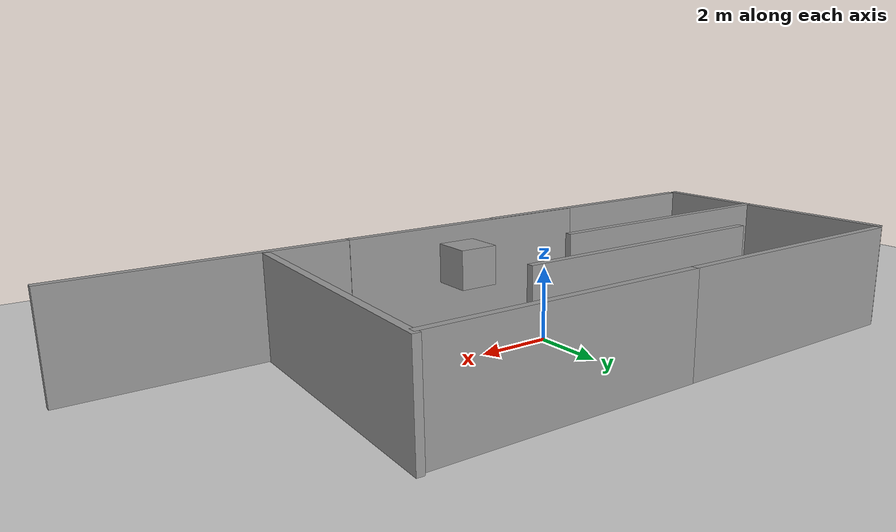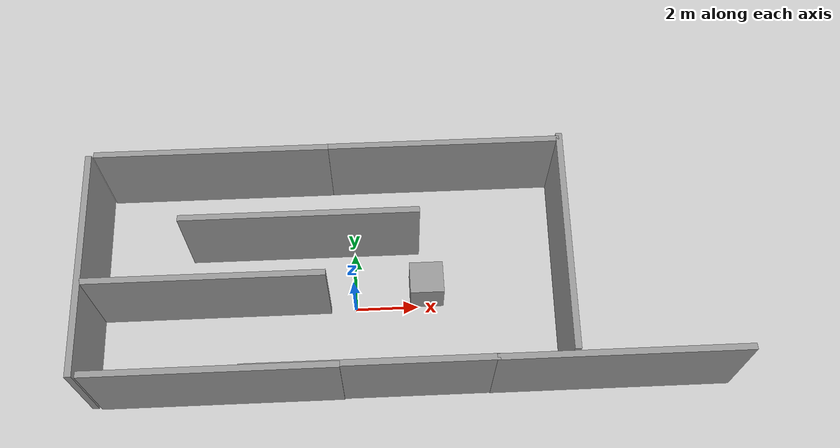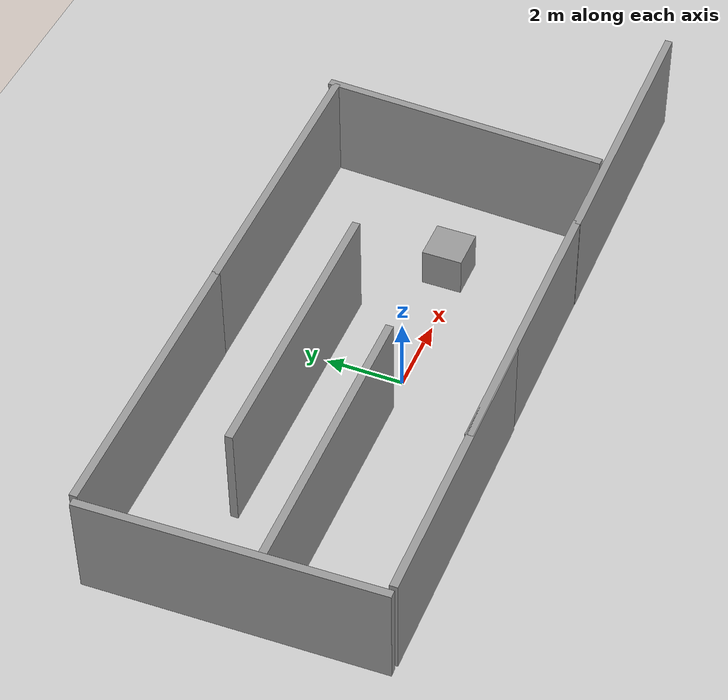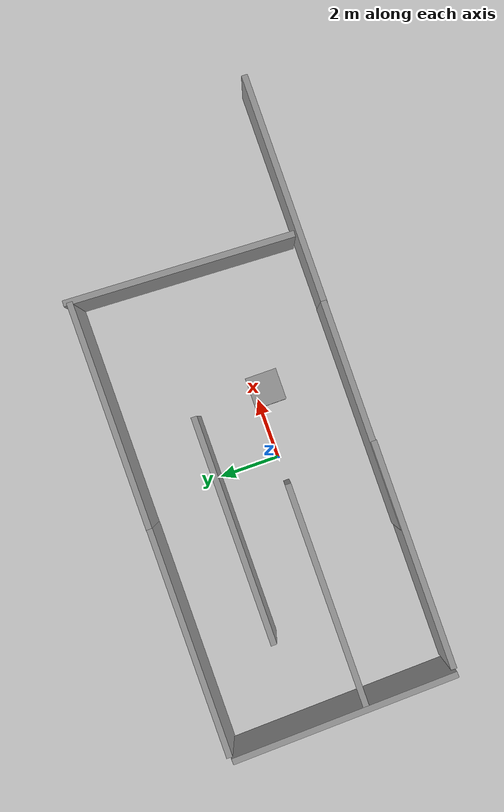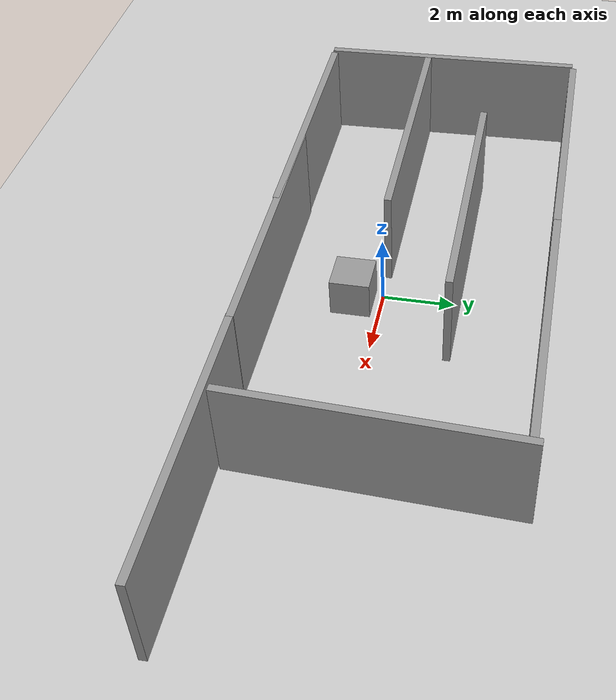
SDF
<sdf version="1.6">
 <world name="default">
  <light name="sun" type="directional">
   <pose>0 0 10 0 -0 0</pose>
   <diffuse>0.8 0.8 0.8 1</diffuse>
   <specular>0.2 0.2 0.2 1</specular>
   <attenuation>
    <range>1000</range>
    <constant>0.9</constant>
    <linear>0.01</linear>
    <quadratic>0.001</quadratic>
   </attenuation>
   <direction>-0.5 0.1 -0.9</direction>
  </light>
  <model name="ground_plane">
   <static>1</static>
   <link name="link">
    <collision name="collision">
     <geometry><plane><normal>0 0 1</normal><size>100 100</size></plane></geometry>
     <surface><friction><ode><mu>100</mu><mu2>50</mu2></ode></friction></surface>
    </collision>
    <visual name="visual">
     <cast_shadows>0</cast_shadows>
     <geometry><plane><normal>0 0 1</normal><size>100 100</size></plane></geometry>
     <material>
      <script><uri>file://media/materials/scripts/gazebo.material</uri><name>Gazebo/Grey</name></script>
     </material>
    </visual>
    <velocity_decay><linear>0</linear><angular>0</angular></velocity_decay>
   </link>
  </model>
  <physics name="default_physics" default="0" type="ode">
   <max_step_size>0.001</max_step_size>
   <real_time_factor>1</real_time_factor>
   <real_time_update_rate>1000</real_time_update_rate>
  </physics>
  <scene><ambient>0.4 0.4 0.4 1</ambient><background>0.7 0.7 0.7 1</background><shadows>1</shadows></scene>
  <spherical_coordinates>
   <surface_model>EARTH_WGS84</surface_model>
   <latitude_deg>0</latitude_deg>
   <longitude_deg>0</longitude_deg>
   <elevation>0</elevation>
   <heading_deg>0</heading_deg>
  </spherical_coordinates>
  <model name="grey_wall">
   <static>1</static>
   <link name="link">
    <pose>0 0 1.4 0 -0 0</pose>
    <collision name="collision"><geometry><box><size>7.5 0.2 2.8</size></box></geometry></collision>
    <visual name="visual">
     <cast_shadows>0</cast_shadows>
     <geometry><box><size>7.5 0.2 2.8</size></box></geometry>
     <material>
      <script>
       <uri>model://grey_wall/materials/scripts</uri>
       <uri>model://grey_wall/materials/textures</uri>
       <name>vrc/grey_wall</name>
      </script>
     </material>
    </visual>
    <velocity_decay><linear>0</linear><angular>0</angular></velocity_decay>
   </link>
   <pose>-4.45669 4.51369 0 0 -0 0</pose>
  </model>
  <model name="grey_wall_0">
   <static>1</static>
   <link name="link">
    <pose>0 0 1.4 0 -0 0</pose>
    <collision name="collision"><geometry><box><size>7.5 0.2 2.8</size></box></geometry></collision>
    <visual name="visual">
     <cast_shadows>0</cast_shadows>
     <geometry><box><size>7.5 0.2 2.8</size></box></geometry>
     <material>
      <script>
       <uri>model://grey_wall/materials/scripts</uri>
       <uri>model://grey_wall/materials/textures</uri>
       <name>vrc/grey_wall</name>
      </script>
     </material>
    </visual>
    <velocity_decay><linear>0</linear><angular>0</angular></velocity_decay>
   </link>
   <pose>-4.17438 -2.94975 0 0 -0 0</pose>
  </model>
  <model name="grey_wall_1">
   <static>1</static>
   <link name="link">
    <pose>0 0 1.4 0 -0 0</pose>
    <collision name="collision"><geometry><box><size>7.5 0.2 2.8</size></box></geometry></collision>
    <visual name="visual">
     <cast_shadows>0</cast_shadows>
     <geometry><box><size>7.5 0.2 2.8</size></box></geometry>
     <material>
      <script>
       <uri>model://grey_wall/materials/scripts</uri>
       <uri>model://grey_wall/materials/textures</uri>
       <name>vrc/grey_wall</name>
      </script>
     </material>
    </visual>
    <velocity_decay><linear>0</linear><angular>0</angular></velocity_decay>
   </link>
   <pose>-8.24091 0.730795 0 0 0 -1.53854</pose>
  </model>
  <model name="grey_wall_2">
   <static>1</static>
   <link name="link">
    <pose>0 0 1.4 0 -0 0</pose>
    <collision name="collision"><geometry><box><size>7.5 0.2 2.8</size></box></geometry></collision>
    <visual name="visual">
     <cast_shadows>0</cast_shadows>
     <geometry><box><size>7.5 0.2 2.8</size></box></geometry>
     <material>
      <script>
       <uri>model://grey_wall/materials/scripts</uri>
       <uri>model://grey_wall/materials/textures</uri>
       <name>vrc/grey_wall</name>
      </script>
     </material>
    </visual>
    <velocity_decay><linear>0</linear><angular>0</angular></velocity_decay>
   </link>
   <pose>-4.55904 0 0 0 -0 0</pose>
  </model>
  <model name="grey_wall_4">
   <static>1</static>
   <link name="link">
    <pose>0 0 1.4 0 -0 0</pose>
    <collision name="collision"><geometry><box><size>7.5 0.2 2.8</size></box></geometry></collision>
    <visual name="visual">
     <cast_shadows>0</cast_shadows>
     <geometry><box><size>7.5 0.2 2.8</size></box></geometry>
     <material>
      <script>
       <uri>model://grey_wall/materials/scripts</uri>
       <uri>model://grey_wall/materials/textures</uri>
       <name>vrc/grey_wall</name>
      </script>
     </material>
    </visual>
    <velocity_decay><linear>0</linear><angular>0</angular></velocity_decay>
   </link>
   <pose>0.431481 -2.92293 0 0 -0 0</pose>
  </model>
  <model name="grey_wall_6">
   <static>1</static>
   <link name="link">
    <pose>0 0 1.4 0 -0 0</pose>
    <collision name="collision"><geometry><box><size>7.5 0.2 2.8</size></box></geometry></collision>
    <visual name="visual">
     <cast_shadows>0</cast_shadows>
     <geometry><box><size>7.5 0.2 2.8</size></box></geometry>
     <material>
      <script>
       <uri>model://grey_wall/materials/scripts</uri>
       <uri>model://grey_wall/materials/textures</uri>
       <name>vrc/grey_wall</name>
      </script>
     </material>
    </visual>
    <velocity_decay><linear>0</linear><angular>0</angular></velocity_decay>
   </link>
   <pose>3 4.52028 0 0 -0 0</pose>
  </model>
  <gravity>0 0 -9.8</gravity>
  <magnetic_field>6e-06 2.3e-05 -4.2e-05</magnetic_field>
  <atmosphere type="adiabatic"/>
  <model name="grey_wall_3">
   <static>1</static>
   <link name="link">
    <pose>0 0 1.4 0 -0 0</pose>
    <collision name="collision"><geometry><box><size>7.5 0.2 2.8</size></box></geometry></collision>
    <visual name="visual">
     <cast_shadows>0</cast_shadows>
     <geometry><box><size>7.5 0.2 2.8</size></box></geometry>
     <material>
      <script>
       <uri>model://grey_wall/materials/scripts</uri>
       <uri>model://grey_wall/materials/textures</uri>
       <name>vrc/grey_wall</name>
      </script>
     </material>
    </visual>
   </link>
   <pose>7.84094 -2.93208 0 0 -0 0</pose>
  </model>
  <model name="unit_box">
   <pose>2.20341 -0.332295 2.35914 -1e-06 0 -0.000169</pose>
   <link name="link">
    <inertial>
     <mass>1</mass>
     <inertia>
      <ixx>0.166667</ixx>
      <ixy>0</ixy>
      <ixz>0</ixz>
      <iyy>0.166667</iyy>
      <iyz>0</iyz>
      <izz>0.166667</izz>
     </inertia>
    </inertial>
    <collision name="collision"><geometry><box><size>1 1 0.999999</size></box></geometry></collision>
    <visual name="visual">
     <geometry><box><size>1 1 0.999999</size></box></geometry>
     <material>
      <script><name>Gazebo/Grey</name><uri>file://media/materials/scripts/gazebo.material</uri></script>
     </material>
    </visual>
   </link>
  </model>
  <model name="grey_wall_7">
   <static>1</static>
   <link name="link">
    <pose>0 0 1.4 0 -0 0</pose>
    <collision name="collision"><geometry><box><size>7.5 0.2 2.8</size></box></geometry></collision>
    <visual name="visual">
     <cast_shadows>0</cast_shadows>
     <geometry><box><size>7.5 0.2 2.8</size></box></geometry>
     <material>
      <script>
       <uri>model://grey_wall/materials/scripts</uri>
       <uri>model://grey_wall/materials/textures</uri>
       <name>vrc/grey_wall</name>
      </script>
     </material>
    </visual>
   </link>
   <pose>6.60504 0.970673 0 0 -0 1.52733</pose>
  </model>
  <model name="grey_wall_2_clone">
   <static>1</static>
   <link name="link">
    <pose>0 0 1.4 0 -0 0</pose>
    <collision name="collision"><geometry><box><size>7.5 0.2 2.8</size></box></geometry></collision>
    <visual name="visual">
     <cast_shadows>0</cast_shadows>
     <geometry><box><size>7.5 0.2 2.8</size></box></geometry>
     <material>
      <script>
       <uri>model://grey_wall/materials/scripts</uri>
       <uri>model://grey_wall/materials/textures</uri>
       <name>vrc/grey_wall</name>
      </script>
     </material>
    </visual>
    <velocity_decay><linear>0</linear><angular>0</angular></velocity_decay>
   </link>
   <pose>-1.62806 2.05942 0 0 -0 0</pose>
  </model>
 </world>
</sdf>
